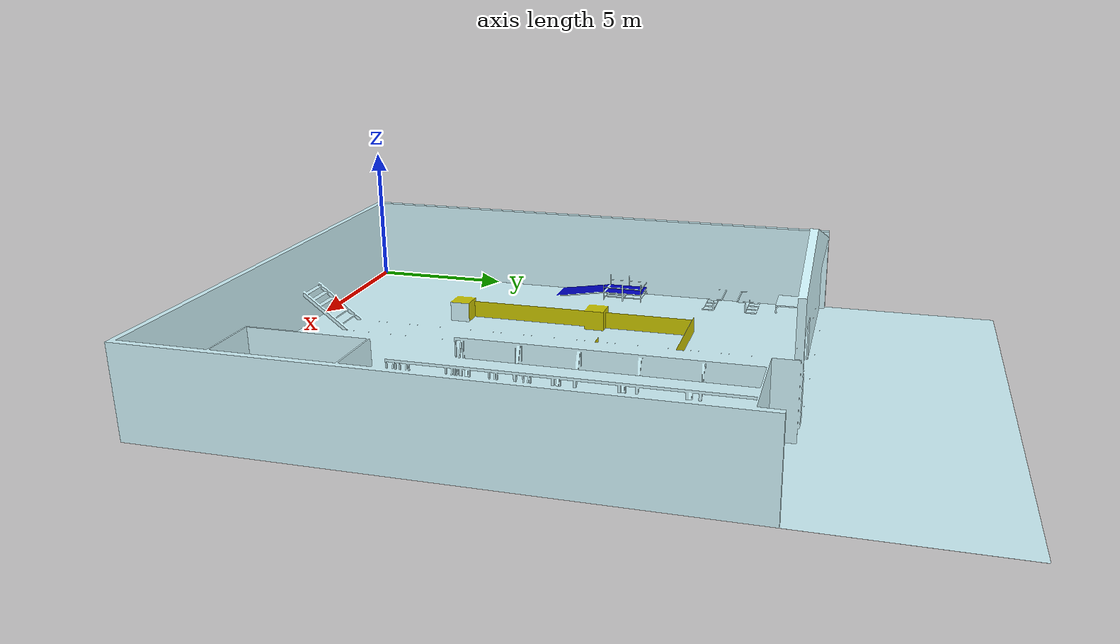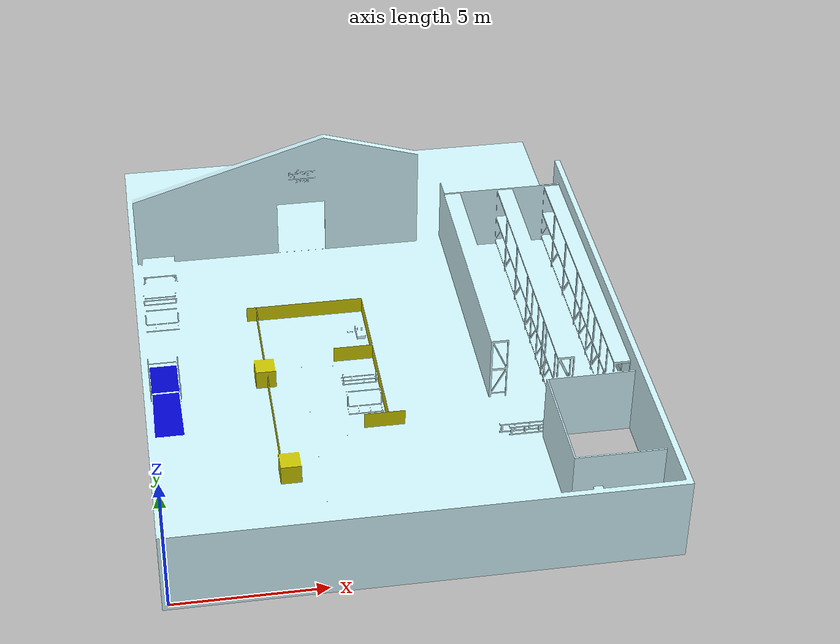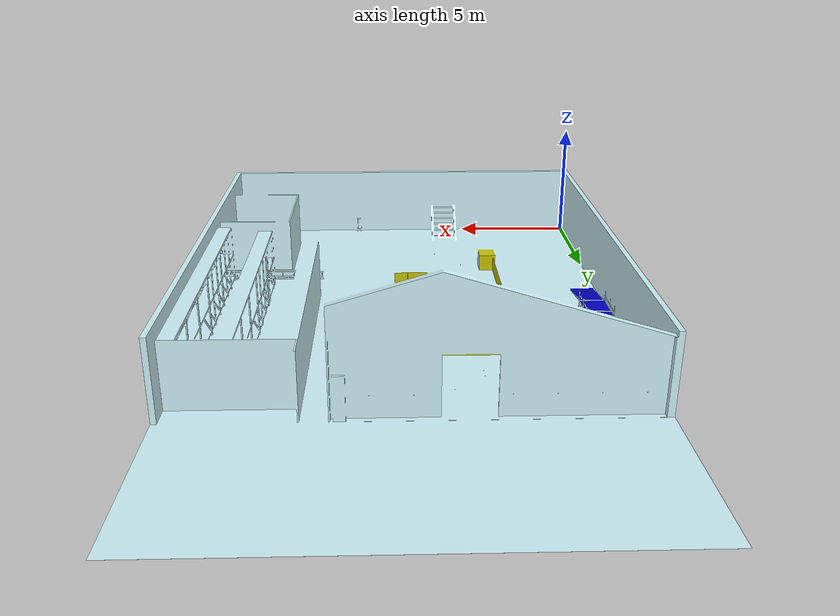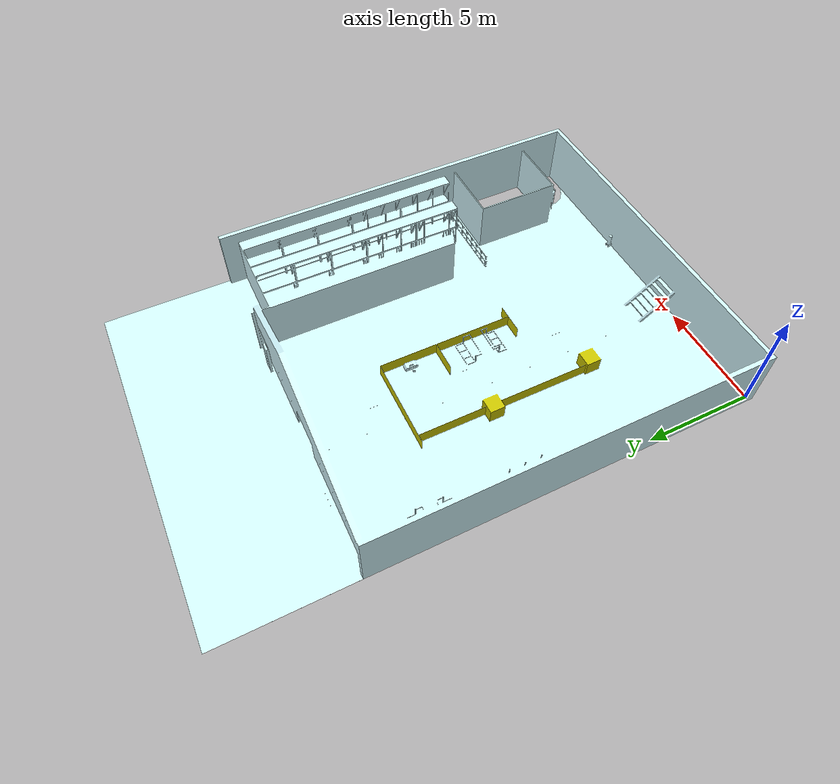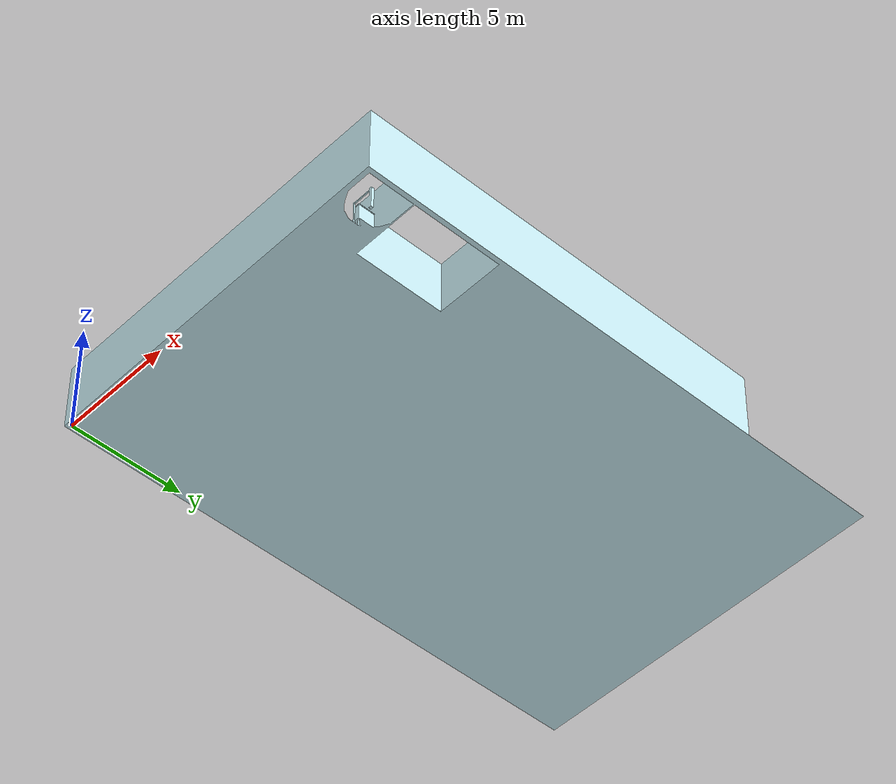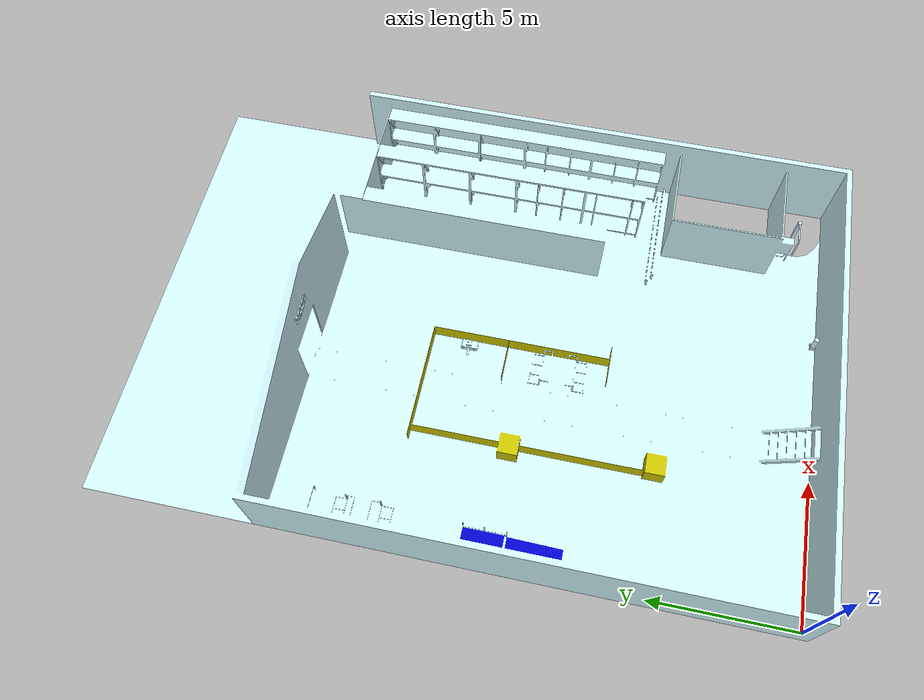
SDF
<?xml version="1.0" ?>
<sdf version="1.5">
  <model name="argetestsahasi2">
     <static>true</static>
     <pose>0 0 0 0 0 0</pose>
     <link name="link">
      <collision name="collision">
        <geometry>
          <mesh>
            <uri>model://argetestsahasi2/meshes/argetestsahasi2.dae</uri>
          </mesh>
        </geometry>
      </collision>
      <visual name="visual">
        <geometry>
          <mesh>
            <uri>model://argetestsahasi2/meshes/argetestsahasi2.dae</uri>
          </mesh>
        </geometry>
      </visual>
    </link>
  </model>
</sdf>
